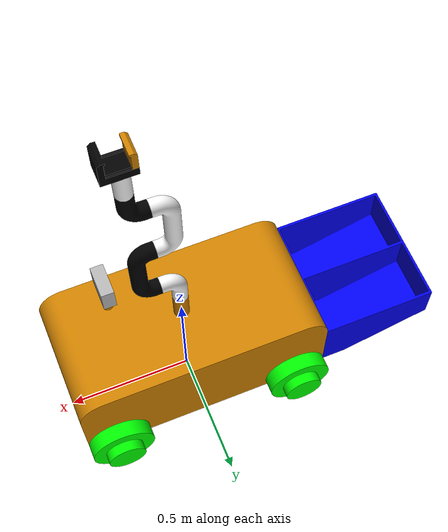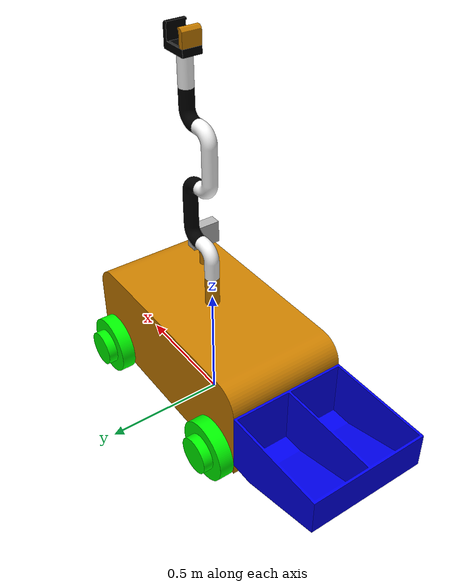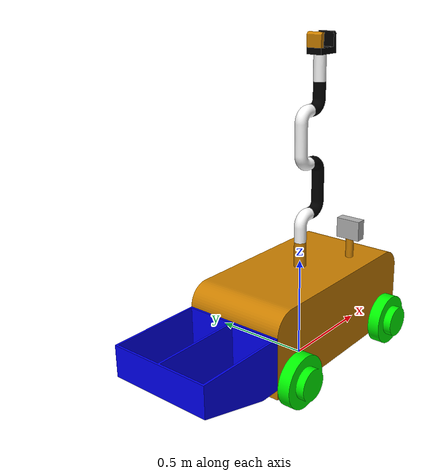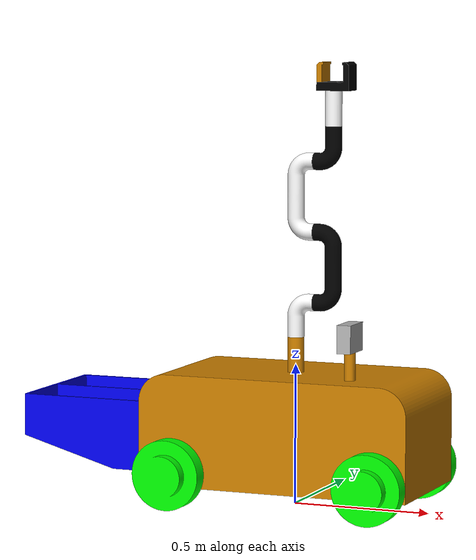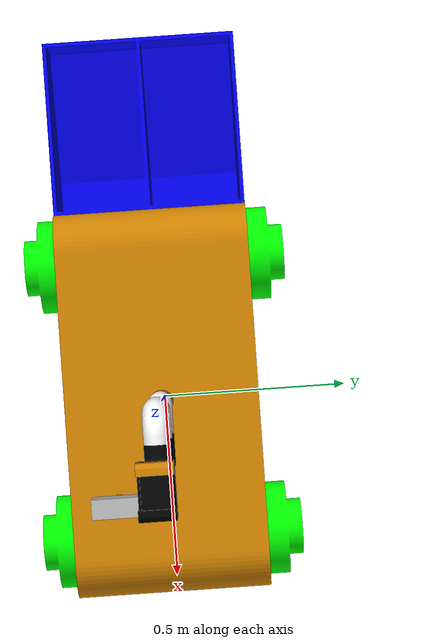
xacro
<?xml version="1.0"?>
<robot xmlns:xacro="http://www.ros.org/wiki/xacro" name="chaleBOT">

    <!-- Import chaleBOT urdf file -->
    <xacro:include filename="$(find chaleBOT_description)/urdf/chaleBOT.xacro" />

    <!-- Import control_xacro -->

</robot>

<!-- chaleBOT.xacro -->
<robot name="chaleBOT" xmlns:xacro="http://www.ros.org/wiki/xacro">

  <xacro:include filename="$(find chaleBOT_description)/urdf/materials.xacro" />
  <xacro:include filename="$(find chaleBOT_description)/urdf/chaleBOT.gazebo" />

<link name="base_footprint"/>

<joint name="base_footprint_to_base_link" type="fixed">
    <parent link="base_footprint"/>
    <child  link="base_link"/>
    <origin xyz="0 0 0" rpy="0 0 0"/>
</joint>

  <link name="base_link">
    <inertial>
      <origin xyz="0 0 -0.125" rpy="0 0 0"/>
      <mass value="20"/>
      <inertia ixx="52.987821" iyy="147.616097" izz="159.325124" ixy="0.030807" iyz="0.030981" ixz="-0.061962"/>
    </inertial>
    <visual>
      <origin xyz="0 0 -0.125" rpy="0 0 0"/>
      <geometry>
        <mesh filename="package://chaleBOT_description/meshes/base_link.stl" scale="0.001 0.001 0.001"/>
      </geometry>
      <material name="yellow"/>
    </visual>
    <collision>
      <origin xyz="0 0 -0.125" rpy="0 0 0"/>
      <geometry>
        <mesh filename="package://chaleBOT_description/meshes/base_link.stl" scale="0.001 0.001 0.001"/>
      </geometry>
    </collision>
  </link>

  <link name="arm_link_1_1">
    <inertial>
      <origin xyz="-0.0 -0.0 -0.85" rpy="0 0 0"/>
      <mass value="0.5"/>
      <inertia ixx="0.009148" iyy="0.008029" izz="0.003193" ixy="0.000469" iyz="-0.002174" ixz="0.000791"/>
    </inertial>
    <visual>
      <origin xyz="-0.0 -0.0 -0.85" rpy="0 0 0"/>
      <geometry>
        <mesh filename="package://chaleBOT_description/meshes/arm_link_1_1.stl" scale="0.001 0.001 0.001"/>
      </geometry>
      <material name="white"/>
    </visual>
    <collision>
      <origin xyz="-0.0 -0.0 -0.85" rpy="0 0 0"/>
      <geometry>
        <mesh filename="package://chaleBOT_description/meshes/arm_link_1_1.stl" scale="0.001 0.001 0.001"/>
      </geometry>
    </collision>
  </link>

  <link name="arm_link_2_1">
    <inertial>
      <origin xyz="0 0 -0.85" rpy="0 0 0"/>
      <mass value="0.5"/>
      <inertia ixx="0.019674" iyy="0.059289" izz="0.061021" ixy="-0.016621" iyz="0.006801" ixz="0.018686"/>
    </inertial>
    <visual>
      <origin xyz="0 0 -0.85" rpy="0 0 0"/>
      <geometry>
        <mesh filename="package://chaleBOT_description/meshes/arm_link_2_1.stl" scale="0.001 0.001 0.001"/>
      </geometry>
      <material name="black"/>
    </visual>
    <collision>
      <origin xyz="0 0 -0.85" rpy="0 0 0"/>
      <geometry>
        <mesh filename="package://chaleBOT_description/meshes/arm_link_2_1.stl" scale="0.001 0.001 0.001"/>
      </geometry>
    </collision>
  </link>

  <link name="arm_link_3_1">
    <inertial>
      <origin xyz="0 0 -1.1" rpy="0 0 0"/>
      <mass value="0.5"/>
      <inertia ixx="0.013698" iyy="0.058497" izz="0.067788" ixy="-0.018796" iyz="-0.001837" ixz="-0.005048"/>
    </inertial>
    <visual>
      <origin xyz="0 0 -1.1" rpy="0 0 0"/>
      <geometry>
        <mesh filename="package://chaleBOT_description/meshes/arm_link_3_1.stl" scale="0.001 0.001 0.001"/>
      </geometry>
      <material name="white"/>
    </visual>
    <collision>
      <origin xyz="0 0 -1.1" rpy="0 0 0"/>
      <geometry>
        <mesh filename="package://chaleBOT_description/meshes/arm_link_3_1.stl" scale="0.001 0.001 0.001"/>
      </geometry>
    </collision>
  </link>

  <link name="arm_link_4_1">
    <inertial>
      <origin xyz="0 0 -1.35" rpy="0 0 0"/>
      <mass value="0.5"/>
      <inertia ixx="0.004834" iyy="0.008748" izz="0.006788" ixy="0.000672" iyz="0.000366" ixz="-0.003343"/>
    </inertial>
    <visual>
      <origin xyz="0 0 -1.35" rpy="0 0 0"/>
      <geometry>
        <mesh filename="package://chaleBOT_description/meshes/arm_link_4_1.stl" scale="0.001 0.001 0.001"/>
      </geometry>
      <material name="black"/>
    </visual>
    <collision>
      <origin xyz="0 0 -1.35" rpy="0 0 0"/>
      <geometry>
        <mesh filename="package://chaleBOT_description/meshes/arm_link_4_1.stl" scale="0.001 0.001 0.001"/>
      </geometry>
    </collision>
  </link>

  <link name="arm_link_5_1">
    <inertial>
      <origin xyz="-0.14 0 -1.475" rpy="0 0 0"/>
      <mass value="0.5"/>
      <inertia ixx="0.002688" iyy="0.004032" izz="0.003002" ixy="-0.000564" iyz="-0.000503" ixz="-0.001383"/>
    </inertial>
    <visual>
      <origin xyz="-0.14 0 -1.475" rpy="0 0 0"/>
      <geometry>
        <mesh filename="package://chaleBOT_description/meshes/arm_link_5_1.stl" scale="0.001 0.001 0.001"/>
      </geometry>
      <material name="white"/>
    </visual>
    <collision>
      <origin xyz="-0.14 0 -1.475" rpy="0 0 0"/>
      <geometry>
        <mesh filename="package://chaleBOT_description/meshes/arm_link_5_1.stl" scale="0.001 0.001 0.001"/>
      </geometry>
    </collision>
  </link>

  <link name="gripper_stator_1">
    <inertial>
      <origin xyz="-0.13 0.0 -1.6" rpy="0 0 0"/>
      <mass value="0.1"/>
      <inertia ixx="0.004935" iyy="0.004592" izz="0.006025" ixy="0.001636" iyz="0.000825" ixz="-0.000536"/>
    </inertial>
    <visual>
      <origin xyz="-0.13 0.0 -1.6" rpy="0 0 0"/>
      <geometry>
        <mesh filename="package://chaleBOT_description/meshes/gripper_stator_1.stl" scale="0.001 0.001 0.001"/>
      </geometry>
      <material name="black"/>
    </visual>
    <collision>
      <origin xyz="-0.13 0.0 -1.6" rpy="0 0 0"/>
      <geometry>
        <mesh filename="package://chaleBOT_description/meshes/gripper_stator_1.stl" scale="0.001 0.001 0.001"/>
      </geometry>
    </collision>
  </link>

  <link name="gripper_clamp_1">
    <inertial>
      <origin xyz="-0.21 0 -1.6" rpy="0 0 0"/>
      <mass value="0.05"/>
      <inertia ixx="0.000492" iyy="0.000793" izz="0.000436" ixy="-0.000111" iyz="2.8e-05" ixz="5e-05"/>
    </inertial>
    <visual>
      <origin xyz="-0.21 0 -1.6" rpy="0 0 0"/>
      <geometry>
        <mesh filename="package://chaleBOT_description/meshes/gripper_clamp_1.stl" scale="0.001 0.001 0.001"/>
      </geometry>
      <material name="yellow"/>
    </visual>
    <collision>
      <origin xyz="-0.21 0 -1.6" rpy="0 0 0"/>
      <geometry>
        <mesh filename="package://chaleBOT_description/meshes/gripper_clamp_1.stl" scale="0.001 0.001 0.001"/>
      </geometry>
    </collision>
  </link>

  <link name="pick_basket_1">
    <inertial>
      <origin xyz="0.5 -0.0 -0.625" rpy="0 0 0"/>
      <mass value="0.5"/>
      <inertia ixx="1.796099" iyy="1.599204" izz="2.816743" ixy="0.0" iyz="0.0" ixz="0.143919"/>
    </inertial>
    <visual>
      <origin xyz="0.5 -0.0 -0.625" rpy="0 0 0"/>
      <geometry>
        <mesh filename="package://chaleBOT_description/meshes/pick_basket_1.stl" scale="0.001 0.001 0.001"/>
      </geometry>
      <material name="blue"/>
    </visual>
    <collision>
      <origin xyz="0.5 -0.0 -0.625" rpy="0 0 0"/>
      <geometry>
        <mesh filename="package://chaleBOT_description/meshes/pick_basket_1.stl" scale="0.001 0.001 0.001"/>
      </geometry>
    </collision>
  </link>

  <link name="rightFWD_wheel_1">
    <inertial>
      <origin xyz="-0.375 0.25 -0.25" rpy="0 0 0"/>
      <mass value="0.5"/>
      <inertia ixx="0.116979" iyy="0.196232" izz="0.116979" ixy="-0.0" iyz="-0.0" ixz="0.0"/>
    </inertial>
    <visual>
      <origin xyz="-0.375 0.25 -0.25" rpy="0 0 0"/>
      <geometry>
        <mesh filename="package://chaleBOT_description/meshes/rightFWD_wheel_1.stl" scale="0.001 0.001 0.001"/>
      </geometry>
      <material name="green"/>
    </visual>
    <collision>
      <origin xyz="-0.375 0.25 -0.25" rpy="0 0 0"/>
      <geometry>
        <mesh filename="package://chaleBOT_description/meshes/rightFWD_wheel_1.stl" scale="0.001 0.001 0.001"/>
      </geometry>
    </collision>
  </link>

  <link name="rightAFT_wheel_1">
    <inertial>
      <origin xyz="0.375 0.25 -0.25" rpy="0 0 0"/>
      <mass value="0.5"/>
      <inertia ixx="0.116979" iyy="0.196232" izz="0.116979" ixy="0.0" iyz="-0.0" ixz="0.0"/>
    </inertial>
    <visual>
      <origin xyz="0.375 0.25 -0.25" rpy="0 0 0"/>
      <geometry>
        <mesh filename="package://chaleBOT_description/meshes/rightAFT_wheel_1.stl" scale="0.001 0.001 0.001"/>
      </geometry>
      <material name="green"/>
    </visual>
    <collision>
      <origin xyz="0.375 0.25 -0.25" rpy="0 0 0"/>
      <geometry>
        <mesh filename="package://chaleBOT_description/meshes/rightAFT_wheel_1.stl" scale="0.001 0.001 0.001"/>
      </geometry>
    </collision>
  </link>

  <link name="leftAFT_wheel_1">
    <inertial>
      <origin xyz="0.375 -0.25 -0.25" rpy="0 0 0"/>
      <mass value="0.5"/>
      <inertia ixx="0.116979" iyy="0.196232" izz="0.116979" ixy="-0.0" iyz="0.0" ixz="-0.0"/>
    </inertial>
    <visual>
      <origin xyz="0.375 -0.25 -0.25" rpy="0 0 0"/>
      <geometry>
        <mesh filename="package://chaleBOT_description/meshes/leftAFT_wheel_1.stl" scale="0.001 0.001 0.001"/>
      </geometry>
      <material name="green"/>
    </visual>
    <collision>
      <origin xyz="0.375 -0.25 -0.25" rpy="0 0 0"/>
      <geometry>
        <mesh filename="package://chaleBOT_description/meshes/leftAFT_wheel_1.stl" scale="0.001 0.001 0.001"/>
      </geometry>
    </collision>
  </link>

  <link name="leftFWD_wheel_1">
    <inertial>
      <origin xyz="-0.375 -0.25 -0.25" rpy="0 0 0"/>
      <mass value="0.5"/>
      <inertia ixx="0.116979" iyy="0.196232" izz="0.116979" ixy="0.0" iyz="0.0" ixz="0.0"/>
    </inertial>
    <visual>
      <origin xyz="-0.375 -0.25 -0.25" rpy="0 0 0"/>
      <geometry>
        <mesh filename="package://chaleBOT_description/meshes/leftFWD_wheel_1.stl" scale="0.001 0.001 0.001"/>
      </geometry>
      <material name="green"/>
    </visual>
    <collision>
      <origin xyz="-0.375 -0.25 -0.25" rpy="0 0 0"/>
      <geometry>
        <mesh filename="package://chaleBOT_description/meshes/leftFWD_wheel_1.stl" scale="0.001 0.001 0.001"/>
      </geometry>
    </collision>
  </link>

  <link name="camera_1">
    <inertial>
      <origin xyz="-0.25 0.125 -0.7" rpy="0 0 0"/>
      <mass value="1"/>
      <inertia ixx="0.005111" iyy="0.010477" izz="0.00741" ixy="0.0" iyz="0.0" ixz="0.0"/>
    </inertial>
    <visual>
      <origin xyz="-0.25 0.125 -0.7" rpy="0 0 0"/>
      <geometry>
        <mesh filename="package://chaleBOT_description/meshes/camera_1.stl" scale="0.001 0.001 0.001"/>
      </geometry>
      <material name="silver"/>
    </visual>
    <collision>
      <origin xyz="-0.25 0.125 -0.7" rpy="0 0 0"/>
      <geometry>
        <mesh filename="package://chaleBOT_description/meshes/camera_1.stl" scale="0.001 0.001 0.001"/>
      </geometry>
    </collision>
  </link>

  <joint name="Revolute_14" type="revolute">
    <origin xyz="0.0 0.0 0.725" rpy="0 0 0"/>
    <parent link="base_link"/>
    <child link="arm_link_1_1"/>
    <axis xyz="0.0 0.0 1.0"/>
    <limit effort="500" velocity="10" lower="-3.14159" upper="3.14159" />
    <dynamics damping="1.0" friction="0.1"/>
  </joint>

  <joint name="Revolute_15" type="revolute">
    <origin xyz="0 0 0" rpy="0 0 0"/>
    <parent link="arm_link_1_1"/>
    <child link="arm_link_2_1"/>
    <axis xyz="1 0 0"/>
    <limit effort="500" velocity="10" lower="-3.14159" upper="3.14159" />
    <dynamics damping="1.0" friction="0.1"/>
  </joint>

  <joint name="Revolute_16" type="revolute">
    <origin xyz="0.0 0.0 0.25" rpy="0 0 0"/>
    <parent link="arm_link_2_1"/>
    <child link="arm_link_3_1"/>
    <axis xyz="1 0 0"/>
    <limit effort="500" velocity="10" lower="-3.14159" upper="3.14159" />
    <dynamics damping="1.0" friction="0.1"/>
  </joint>

  <joint name="Revolute_17" type="revolute">
    <origin xyz="0 0 0.25" rpy="0 0 0"/>
    <parent link="arm_link_3_1"/>
    <child link="arm_link_4_1"/>
    <axis xyz="1 0 0"/>
    <limit effort="500" velocity="10" lower="-3.14159" upper="3.14159" />
    <dynamics damping="1.0" friction="0.1"/>
  </joint>

  <joint name="Revolute_18" type="revolute">
    <origin xyz="0.14 0 0.125" rpy="0 0 0"/>
    <parent link="arm_link_4_1"/>
    <child link="arm_link_5_1"/>
    <axis xyz="0 0 1"/>
    <limit effort="500" velocity="10" lower="-3.14159" upper="3.14159" />
    <dynamics damping="1.0" friction="0.1"/>
  </joint>

  <joint name="Rigid_19" type="fixed">
    <origin xyz="0 0 0.125" rpy="0 0 0"/>
    <parent link="arm_link_5_1"/>
    <child link="gripper_stator_1"/>
  </joint>

  <joint name="Slider_20" type="prismatic">
    <origin xyz="0.0 0.0 0.0" rpy="0 0 0"/>
    <parent link="gripper_stator_1"/>
    <child link="gripper_clamp_1"/>
    <axis xyz="1 0.0 0.0"/>
    <limit lower="0.0" upper="0.08" effort="20" velocity="1" acceleration="0.1"/>
    <dynamics damping="1.0" friction="1.0"/>
  </joint>

  <joint name="Rigid_21" type="fixed">
    <origin xyz="-0.5 0.0 0.5" rpy="0 0 0"/>
    <parent link="base_link"/>
    <child link="pick_basket_1"/>
  </joint>

  <joint name="Revolute_23" type="continuous">
    <origin xyz="0.375 -0.25 0.125" rpy="0 0 0"/>
    <parent link="base_link"/>
    <child link="rightFWD_wheel_1"/>
    <axis xyz="0.0 1.0 0.0"/>
    <dynamics damping="1.0" friction="1.0"/>
  </joint>

  <joint name="Revolute_24" type="continuous">
    <origin xyz="-0.375 -0.25 0.125" rpy="0 0 0"/>
    <parent link="base_link"/>
    <child link="rightAFT_wheel_1"/>
    <axis xyz="0.0 1.0 0.0"/>
    <dynamics damping="1.0" friction="1.0"/>
  </joint>

  <joint name="Revolute_25" type="continuous">
    <origin xyz="-0.375 0.25 0.125" rpy="0 0 0"/>
    <parent link="base_link"/>
    <child link="leftAFT_wheel_1"/>
    <axis xyz="0.0 1.0 0.0"/>
    <dynamics damping="1.0" friction="1.0"/>
  </joint>

  <joint name="Revolute_26" type="continuous">
    <origin xyz="0.375 0.25 0.125" rpy="0 0 0"/>
    <parent link="base_link"/>
    <child link="leftFWD_wheel_1"/>
    <axis xyz="0.0 1.0 0.0"/>
    <dynamics damping="1.0" friction="1.0"/>
  </joint>

  <joint name="Revolute_27" type="revolute">
    <origin xyz="0.25 -0.125 0.575" rpy="0 0 -1.5708"/>
    <parent link="base_link"/>
    <child link="camera_1"/>
    <axis xyz="0.0 0.0 1.0"/>
    <limit effort="10" velocity="10" lower="-3.14159" upper="3.14159" />
    <dynamics damping="1.0" friction="1.0"/>
  </joint>

<ros2_control name="chaleBOT_control" type="system">

  <hardware>
    <plugin>gz_ros2_control/GazeboSimSystem</plugin>
  </hardware>

  <!-- ===================== ARM (5 DOF) ===================== -->
  <joint name="Revolute_14">
    <command_interface name="position">
      <param name="min">-3.14159</param>
      <param name="max">3.14159</param>
    </command_interface>
    <state_interface name="position"/>
  </joint>

  <joint name="Revolute_15">
    <command_interface name="position">
      <param name="min">-3.14159</param>
      <param name="max">3.14159</param>
    </command_interface>
    <state_interface name="position"/>
  </joint>

  <joint name="Revolute_16">
    <command_interface name="position">
      <param name="min">-3.14159</param>
      <param name="max">3.14159</param>
    </command_interface>
    <state_interface name="position"/>
  </joint>

  <joint name="Revolute_17">
    <command_interface name="position">
      <param name="min">-3.14159</param>
      <param name="max">3.14159</param>
    </command_interface>
    <state_interface name="position"/>
  </joint>

  <joint name="Revolute_18">
    <command_interface name="position">
      <param name="min">-3.14159</param>
      <param name="max">3.14159</param>
    </command_interface>
    <state_interface name="position"/>
  </joint>

  <!-- ===================== GRIPPER (prismatic) ===================== -->
  <joint name="Slider_20">
    <command_interface name="position">
      <param name="min">0.0</param>
      <param name="max">0.08</param>
    </command_interface>
    <state_interface name="position"/>
  </joint>

  <!-- ===================== CAMERA PAN (revolute) ===================== -->
  <joint name="Revolute_27">
    <command_interface name="position">
      <param name="min">-1.5708</param>
      <param name="max">1.5708</param>
    </command_interface>
    <state_interface name="position"/>
  </joint>

</ros2_control>

</robot>

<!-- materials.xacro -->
<robot name="chaleBOT" xmlns:xacro="http://www.ros.org/wiki/xacro" >

<material name="silver">
  <color rgba="0.700 0.700 0.700 1.000"/>
</material>

<material name="red">
  <color rgba="1.0 0.0 0.0 1.000"/>
</material>

<material name="blue">
  <color rgba="0.0 0.0 0.95 1.000"/>
</material>

<material name="yellow">
  <color rgba="0.8 0.5 0.0 1.000"/>
</material>

<material name="white">
  <color rgba="0.99 0.99 0.99 1.000"/>
</material>

<material name="black">
  <color rgba="0 0 0 1.000"/>
</material>

<material name="green">
  <color rgba="0.0 1.0 0.0 1.000"/>
</material>

</robot>

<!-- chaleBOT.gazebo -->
<robot name="chaleBOT" xmlns:xacro="http://www.ros.org/wiki/xacro">

  <xacro:property name="body_color" value="Gazebo/Silver" />

  <gazebo>
  <plugin name="gz_ros2_control::GazeboSimROS2ControlPlugin"
          filename="gz_ros2_control-system">
    <parameters>$(find chaleBOT_description)/launch/controller.yaml</parameters>
  </plugin>
</gazebo>

  <gazebo reference="base_link">
    <material>${body_color}</material>
    <mu1>0.2</mu1>
    <mu2>0.2</mu2>
    <selfCollide>true</selfCollide>
    <gravity>true</gravity>
  </gazebo>

  <gazebo reference="arm_link_1_1"><material>${body_color}</material><mu1>0.2</mu1><mu2>0.2</mu2><selfCollide>true</selfCollide><gravity>false</gravity></gazebo>
  <gazebo reference="arm_link_2_1"><material>${body_color}</material><mu1>0.2</mu1><mu2>0.2</mu2><selfCollide>true</selfCollide><gravity>false</gravity></gazebo>
  <gazebo reference="arm_link_3_1"><material>${body_color}</material><mu1>0.2</mu1><mu2>0.2</mu2><selfCollide>true</selfCollide><gravity>false</gravity></gazebo>
  <gazebo reference="arm_link_4_1"><material>${body_color}</material><mu1>0.2</mu1><mu2>0.2</mu2><selfCollide>true</selfCollide><gravity>false</gravity></gazebo>
  <gazebo reference="arm_link_5_1"><material>${body_color}</material><mu1>0.2</mu1><mu2>0.2</mu2><selfCollide>true</selfCollide><gravity>false</gravity></gazebo>
  <gazebo reference="gripper_stator_1"><material>${body_color}</material><mu1>0.2</mu1><mu2>0.2</mu2><selfCollide>true</selfCollide></gazebo>
  <gazebo reference="gripper_clamp_1"><material>${body_color}</material><mu1>0.2</mu1><mu2>0.2</mu2><selfCollide>true</selfCollide></gazebo>
  <gazebo reference="pick_basket_1"><material>${body_color}</material><mu1>0.2</mu1><mu2>0.2</mu2><selfCollide>true</selfCollide></gazebo>
  <gazebo reference="rightFWD_wheel_1"><material>${body_color}</material><mu1>0.2</mu1><mu2>0.2</mu2><selfCollide>true</selfCollide></gazebo>
  <gazebo reference="rightAFT_wheel_1"><material>${body_color}</material><mu1>0.2</mu1><mu2>0.2</mu2><selfCollide>true</selfCollide></gazebo>
  <gazebo reference="leftAFT_wheel_1"><material>${body_color}</material><mu1>0.2</mu1><mu2>0.2</mu2><selfCollide>true</selfCollide></gazebo>
  <gazebo reference="leftFWD_wheel_1"><material>${body_color}</material><mu1>0.2</mu1><mu2>0.2</mu2><selfCollide>true</selfCollide></gazebo>
  <gazebo reference="camera_1"><material>${body_color}</material><mu1>0.2</mu1><mu2>0.2</mu2><selfCollide>true</selfCollide></gazebo>

<gazebo>
  <plugin filename="gz-sim-joint-state-publisher-system"
          name="gz::sim::systems::JointStatePublisher">
    <topic>wheel_states</topic>
    <joint_name>Revolute_23</joint_name>
    <joint_name>Revolute_24</joint_name>
    <joint_name>Revolute_25</joint_name>
    <joint_name>Revolute_26</joint_name>
  </plugin>
</gazebo>

  <!-- ============ DiffDrive ============ -->
  <gazebo>
    <plugin filename="gz-sim-diff-drive-system" name="gz::sim::systems::DiffDrive">
      <right_joint>Revolute_23</right_joint>
      <left_joint>Revolute_26</left_joint>
      <wheel_separation>0.5</wheel_separation>
      <wheel_diameter>0.25</wheel_diameter>
      <max_linear_acceleration>5</max_linear_acceleration>
      <odometry_frame>odom</odometry_frame>
      <robot_base_frame>base_footprint</robot_base_frame>
      <publish_odom>true</publish_odom>
      <publish_odom_tf>true</publish_odom_tf>
      <publish_wheel_tf>true</publish_wheel_tf>
      <topic>/cmd_vel</topic>
      <tf_topic>/tf</tf_topic>
      <odom_topic>odom</odom_topic>
      <frame_id>odom</frame_id>
      <odom_publisher_frequency>10</odom_publisher_frequency>
    </plugin>
  </gazebo>

  <!-- ============ Sensors system (required for cameras + lidar) ============ -->
  <gazebo>
    <plugin filename="gz-sim-sensors-system" name="gz::sim::systems::Sensors">
      <render_engine>ogre2</render_engine>
    </plugin>
  </gazebo>

  <!-- ============ Lidar ============ -->
  <gazebo reference="base_link">
    <sensor name="gpu_lidar" type="gpu_lidar">
      <pose relative_to="base_link">0 0 0 0 0 0</pose>
      <topic>scan</topic>
      <gz_frame_id>base_link</gz_frame_id>
      <update_rate>5</update_rate>
      <lidar>
        <scan>
          <horizontal>
            <samples>360</samples>
            <resolution>1</resolution>
            <min_angle>-3.14</min_angle>
            <max_angle>3.14</max_angle>
          </horizontal>
        </scan>
        <range>
          <min>0.2</min>
          <max>12.0</max>
          <resolution>0.01</resolution>
        </range>
        <noise>
          <type>gaussian</type>
          <mean>0.0</mean>
          <stddev>0.001</stddev>
        </noise>
      </lidar>
      <always_on>1</always_on>
      <visualize>1</visualize>
    </sensor>
  </gazebo>

  <!-- ============ RGB-D camera (replaces old depth-only sensor) ============ -->
  <gazebo reference="camera_1">
    <sensor name="rgbd_camera" type="rgbd_camera">
      <pose> 0.1 0 -0.125 0 0 0 </pose>
      <always_on>true</always_on>
      <update_rate>10</update_rate>
      <topic>camera</topic>
      <gz_frame_id>camera_1_optical</gz_frame_id>
      <visualize>true</visualize>
      <camera>
        <horizontal_fov>1.571</horizontal_fov>
        <image>
          <width>640</width>
          <height>480</height>
          <format>R8G8B8</format>
        </image>
        <clip>
          <near>0.05</near>
          <far>5.0</far>
        </clip>
      </camera>
    </sensor>
  </gazebo>

</robot>
